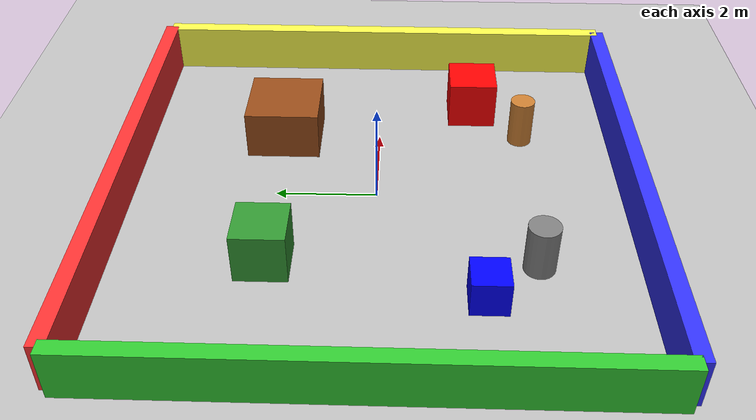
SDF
<sdf version="1.6">
  <world name="slam_world">

    <!-- LIGHT -->
    <light name="sun" type="directional">
      <pose>0 0 10 0 0 0</pose>
      <diffuse>1 1 1 1</diffuse>
      <direction>-0.5 0.1 -0.9</direction>
    </light>

    <!-- GROUND -->
    <model name="ground_plane">
      <static>true</static>
      <link name="link">
        <collision name="collision">
          <geometry>
            <plane><normal>0 0 1</normal><size>40 40</size></plane>
          </geometry>
        </collision>
        <visual name="visual">
          <geometry>
            <plane><normal>0 0 1</normal><size>40 40</size></plane>
          </geometry>
          <material>
            <ambient>0.75 0.75 0.75 1</ambient>
            <diffuse>0.75 0.75 0.75 1</diffuse>
          </material>
        </visual>
      </link>
    </model>

    <!-- ================= COLORED WALLS ================= -->

    <!-- FRONT (RED) -->
    <model name="wall_front">
      <static>true</static>
      <pose>0 5 0.5 0 0 0</pose>
      <link name="link">
        <collision name="collision">
          <geometry><box><size>10 0.3 1</size></box></geometry>
        </collision>
        <visual name="visual">
          <geometry><box><size>10 0.3 1</size></box></geometry>
          <material>
            <ambient>1 0.2 0.2 1</ambient>
            <diffuse>1 0.2 0.2 1</diffuse>
          </material>
        </visual>
      </link>
    </model>

    <!-- BACK (BLUE) -->
    <model name="wall_back">
      <static>true</static>
      <pose>0 -5 0.5 0 0 0</pose>
      <link name="link">
        <collision name="collision">
          <geometry><box><size>10 0.3 1</size></box></geometry>
        </collision>
        <visual name="visual">
          <geometry><box><size>10 0.3 1</size></box></geometry>
          <material>
            <ambient>0.2 0.2 1 1</ambient>
            <diffuse>0.2 0.2 1 1</diffuse>
          </material>
        </visual>
      </link>
    </model>

    <!-- LEFT (GREEN) -->
    <model name="wall_left">
      <static>true</static>
      <pose>-5 0 0.5 0 0 1.57</pose>
      <link name="link">
        <collision name="collision">
          <geometry><box><size>10 0.3 1</size></box></geometry>
        </collision>
        <visual name="visual">
          <geometry><box><size>10 0.3 1</size></box></geometry>
          <material>
            <ambient>0.2 0.8 0.2 1</ambient>
            <diffuse>0.2 0.8 0.2 1</diffuse>
          </material>
        </visual>
      </link>
    </model>

    <!-- RIGHT (YELLOW) -->
    <model name="wall_right">
      <static>true</static>
      <pose>5 0 0.5 0 0 1.57</pose>
      <link name="link">
        <collision name="collision">
          <geometry><box><size>10 0.3 1</size></box></geometry>
        </collision>
        <visual name="visual">
          <geometry><box><size>10 0.3 1</size></box></geometry>
          <material>
            <ambient>1 1 0.3 1</ambient>
            <diffuse>1 1 0.3 1</diffuse>
          </material>
        </visual>
      </link>
    </model>

    <!-- ================= SPACED OBJECTS ================= -->

    <!-- TABLE -->
    <model name="table1">
      <static>true</static>
      <pose>2 2 0.5 0 0 0</pose>
      <link name="link">
        <collision name="collision">
          <geometry><box><size>1.5 1.5 1</size></box></geometry>
        </collision>
        <visual name="visual">
          <geometry><box><size>1.5 1.5 1</size></box></geometry>
          <material>
            <ambient>0.6 0.3 0.1 1</ambient>
            <diffuse>0.6 0.3 0.1 1</diffuse>
          </material>
        </visual>
      </link>
    </model>

    <!-- TABLE 2 -->
    <model name="table2">
      <static>true</static>
      <pose>-2 2 0.5 0 0 0</pose>
      <link name="link">
        <collision name="collision">
          <geometry><box><size>1 1 1</size></box></geometry>
        </collision>
        <visual name="visual">
          <geometry><box><size>1 1 1</size></box></geometry>
          <material>
            <ambient>0.2 0.6 0.2 1</ambient>
            <diffuse>0.2 0.6 0.2 1</diffuse>
          </material>
        </visual>
      </link>
    </model>

    <!-- BOXES -->
    <model name="box1">
      <static>true</static>
      <pose>3 -2 0.5 0 0 0</pose>
      <link name="link">
        <collision name="collision">
          <geometry><box><size>1 1 1</size></box></geometry>
        </collision>
        <visual name="visual">
          <geometry><box><size>1 1 1</size></box></geometry>
          <material>
            <ambient>1 0 0 1</ambient>
            <diffuse>1 0 0 1</diffuse>
          </material>
        </visual>
      </link>
    </model>

    <model name="box2">
      <static>true</static>
      <pose>-3 -2 0.5 0 0 0</pose>
      <link name="link">
        <collision name="collision">
          <geometry><box><size>0.7 0.7 0.7</size></box></geometry>
        </collision>
        <visual name="visual">
          <geometry><box><size>0.7 0.7 0.7</size></box></geometry>
          <material>
            <ambient>0 0 1 1</ambient>
            <diffuse>0 0 1 1</diffuse>
          </material>
        </visual>
      </link>
    </model>

    <!-- PILLARS -->
    <model name="pillar1">
      <static>true</static>
      <pose>-2 -3 0.5 0 0 0</pose>
      <link name="link">
        <collision name="collision">
          <geometry><cylinder><radius>0.3</radius><length>1</length></cylinder></geometry>
        </collision>
        <visual name="visual">
          <geometry><cylinder><radius>0.3</radius><length>1</length></cylinder></geometry>
          <material>
            <ambient>0.5 0.5 0.5 1</ambient>
            <diffuse>0.5 0.5 0.5 1</diffuse>
          </material>
        </visual>
      </link>
    </model>

    <model name="pillar2">
      <static>true</static>
      <pose>2 -3 0.5 0 0 0</pose>
      <link name="link">
        <collision name="collision">
          <geometry><cylinder><radius>0.25</radius><length>1</length></cylinder></geometry>
        </collision>
        <visual name="visual">
          <geometry><cylinder><radius>0.25</radius><length>1</length></cylinder></geometry>
          <material>
            <ambient>0.8 0.5 0.2 1</ambient>
            <diffuse>0.8 0.5 0.2 1</diffuse>
          </material>
        </visual>
      </link>
    </model>

  </world>
</sdf>
